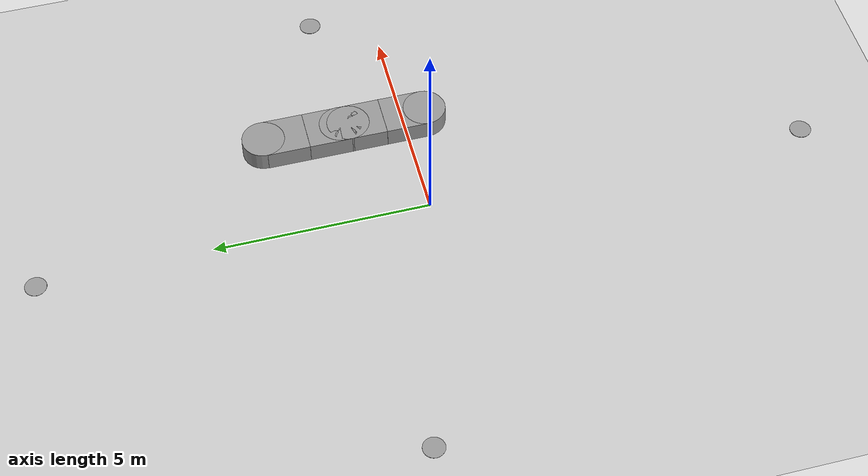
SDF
<sdf version="1.6">
 <world name="default">
  <light name="sun" type="directional">
   <pose>0 0 10 0 -0 0</pose>
   <diffuse>0.8 0.8 0.8 1</diffuse>
   <specular>0.1 0.1 0.1 1</specular>
   <attenuation>
    <range>1000</range>
    <constant>0.9</constant>
    <linear>0.01</linear>
    <quadratic>0.001</quadratic>
   </attenuation>
   <direction>-0.5 0.5 -1</direction>
  </light>
  <model name="ground_plane">
   <static>1</static>
   <link name="link">
    <collision name="collision">
     <geometry><plane><normal>0 0 1</normal><size>100 100</size></plane></geometry>
     <surface><friction><ode><mu>100</mu><mu2>50</mu2></ode></friction></surface>
    </collision>
    <visual name="visual">
     <cast_shadows>0</cast_shadows>
     <geometry><plane><normal>0 0 1</normal><size>100 100</size></plane></geometry>
     <material>
      <script><uri>file://media/materials/scripts/gazebo.material</uri><name>Gazebo/Grey</name></script>
     </material>
    </visual>
   </link>
  </model>
  <gravity>0 0 -9.8</gravity>
  <magnetic_field>6e-06 2.3e-05 -4.2e-05</magnetic_field>
  <atmosphere type="adiabatic"/>
  <physics name="default_physics" default="0" type="ode">
   <max_step_size>0.001</max_step_size>
   <real_time_factor>1</real_time_factor>
   <real_time_update_rate>1000</real_time_update_rate>
  </physics>
  <scene><ambient>0.4 0.4 0.4 1</ambient><background>0.7 0.7 0.7 1</background><shadows>1</shadows></scene>
  <spherical_coordinates>
   <surface_model>EARTH_WGS84</surface_model>
   <latitude_deg>0</latitude_deg>
   <longitude_deg>0</longitude_deg>
   <elevation>0</elevation>
   <heading_deg>0</heading_deg>
  </spherical_coordinates>
  <model name="circle_05_white">
   <link name="link">
    <pose>0 -0.014166 0 0 -0 0</pose>
    <inertial>
     <mass>1</mass>
     <inertia><ixx>0.145833</ixx><ixy>0</ixy><ixz>0</ixz><iyy>0.145833</iyy><iyz>0</iyz><izz>0.125</izz></inertia>
    </inertial>
    <visual name="ModelPreview_1::link::visual_1">
     <geometry><cylinder><radius>0.25</radius><length>0.001</length></cylinder></geometry>
     <material>
      <script><name>Gazebo/Grey</name><uri>file://media/materials/scripts/gazebo.material</uri></script>
      <ambient>1 1 1 1</ambient>
      <diffuse>1 1 1 1</diffuse>
      <specular>0.01 0.01 0.01 1</specular>
      <emissive>0 0 0 1</emissive>
      <shader type="vertex"><normal_map>__default__</normal_map></shader>
     </material>
    </visual>
    <visual name="visual">
     <geometry><cylinder><radius>0.25</radius><length>0.01</length></cylinder></geometry>
     <material>
      <script><name>Gazebo/Grey</name><uri>file://media/materials/scripts/gazebo.material</uri></script>
      <ambient>1 1 1 1</ambient>
      <diffuse>1 1 1 1</diffuse>
      <specular>0.01 0.01 0.01 1</specular>
      <emissive>0 0 0 1</emissive>
      <shader type="vertex"><normal_map>__default__</normal_map></shader>
     </material>
    </visual>
    <visual name="ModelPreview_1::link::visual_2">
     <geometry><cylinder><radius>0.25</radius><length>0.01</length></cylinder></geometry>
     <material>
      <script><name>Gazebo/Grey</name><uri>file://media/materials/scripts/gazebo.material</uri></script>
      <ambient>1 1 1 1</ambient>
      <diffuse>1 1 1 1</diffuse>
      <specular>0.01 0.01 0.01 1</specular>
      <emissive>0 0 0 1</emissive>
      <shader type="vertex"><normal_map>__default__</normal_map></shader>
     </material>
    </visual>
    <collision name="collision">
     <geometry><cylinder><radius>0.25</radius><length>1e-05</length></cylinder></geometry>
     <surface>
      <friction>
       <ode><mu>1</mu><mu2>1</mu2><fdir1>0 0 0</fdir1><slip1>0</slip1><slip2>0</slip2></ode>
       <torsional>
        <coefficient>1</coefficient>
        <patch_radius>0</patch_radius>
        <surface_radius>0</surface_radius>
        <use_patch_radius>1</use_patch_radius>
        <ode><slip>0</slip></ode>
       </torsional>
      </friction>
      <bounce><restitution_coefficient>0</restitution_coefficient><threshold>1e+06</threshold></bounce>
      <contact>
       <collide_without_contact>0</collide_without_contact>
       <collide_without_contact_bitmask>1</collide_without_contact_bitmask>
       <collide_bitmask>1</collide_bitmask>
       <ode>
        <soft_cfm>0</soft_cfm>
        <soft_erp>0.2</soft_erp>
        <kp>1e+13</kp>
        <kd>1</kd>
        <max_vel>0.01</max_vel>
        <min_depth>0</min_depth>
       </ode>
       <bullet>
        <split_impulse>1</split_impulse>
        <split_impulse_penetration_threshold>-0.01</split_impulse_penetration_threshold>
        <soft_cfm>0</soft_cfm>
        <soft_erp>0.2</soft_erp>
        <kp>1e+13</kp>
        <kd>1</kd>
       </bullet>
      </contact>
     </surface>
    </collision>
   </link>
   <static>1</static>
   <pose>6.1 1.5 -0.004551 0 -0 0</pose>
  </model>
  <model name="for_bug_box_and_cylinder_0">
   <link name="link">
    <pose>0.028116 0.126799 0 0 -0 0</pose>
    <inertial>
     <mass>1</mass>
     <inertia><ixx>0.145833</ixx><ixy>0</ixy><ixz>0</ixz><iyy>0.145833</iyy><iyz>0</iyz><izz>0.125</izz></inertia>
    </inertial>
    <visual name="visual">
     <geometry><cylinder><radius>0.5</radius><length>0.5</length></cylinder></geometry>
     <material>
      <script><name>Gazebo/Grey</name><uri>file://media/materials/scripts/gazebo.material</uri></script>
      <ambient>1 1 1 1</ambient>
      <diffuse>1 1 1 1</diffuse>
      <specular>0.01 0.01 0.01 1</specular>
      <emissive>0 0 0 1</emissive>
      <shader type="vertex"><normal_map>__default__</normal_map></shader>
     </material>
    </visual>
    <collision name="collision">
     <geometry><cylinder><radius>0.5</radius><length>0.5</length></cylinder></geometry>
     <surface>
      <friction>
       <ode><mu>1</mu><mu2>1</mu2><fdir1>0 0 0</fdir1><slip1>0</slip1><slip2>0</slip2></ode>
       <torsional>
        <coefficient>1</coefficient>
        <patch_radius>0</patch_radius>
        <surface_radius>0</surface_radius>
        <use_patch_radius>1</use_patch_radius>
        <ode><slip>0</slip></ode>
       </torsional>
      </friction>
      <bounce><restitution_coefficient>0</restitution_coefficient><threshold>1e+06</threshold></bounce>
      <contact>
       <collide_without_contact>0</collide_without_contact>
       <collide_without_contact_bitmask>1</collide_without_contact_bitmask>
       <collide_bitmask>1</collide_bitmask>
       <ode>
        <soft_cfm>0</soft_cfm>
        <soft_erp>0.2</soft_erp>
        <kp>1e+13</kp>
        <kd>1</kd>
        <max_vel>0.01</max_vel>
        <min_depth>0</min_depth>
       </ode>
       <bullet>
        <split_impulse>1</split_impulse>
        <split_impulse_penetration_threshold>-0.01</split_impulse_penetration_threshold>
        <soft_cfm>0</soft_cfm>
        <soft_erp>0.2</soft_erp>
        <kp>1e+13</kp>
        <kd>1</kd>
       </bullet>
      </contact>
     </surface>
    </collision>
   </link>
   <link name="link_0">
    <pose>0.02413 -0.383869 -0.000126 2e-06 4e-06 -0</pose>
    <inertial>
     <mass>1</mass>
     <inertia>
      <ixx>0.166667</ixx>
      <ixy>0</ixy>
      <ixz>0</ixz>
      <iyy>0.166667</iyy>
      <iyz>0</iyz>
      <izz>0.166667</izz>
     </inertia>
    </inertial>
    <visual name="visual">
     <geometry><box><size>1 1 0.5</size></box></geometry>
     <material>
      <lighting>1</lighting>
      <script><uri>file://media/materials/scripts/gazebo.material</uri><name>Gazebo/Grey</name></script>
      <ambient>1 1 1 1</ambient>
      <diffuse>1 1 1 1</diffuse>
      <specular>0.01 0.01 0.01 1</specular>
      <emissive>0 0 0 1</emissive>
      <shader type="vertex"><normal_map>__default__</normal_map></shader>
     </material>
    </visual>
    <collision name="collision">
     <geometry><box><size>1 1 0.5</size></box></geometry>
     <surface>
      <friction>
       <ode><mu>1</mu><mu2>1</mu2><fdir1>0 0 0</fdir1><slip1>0</slip1><slip2>0</slip2></ode>
       <torsional>
        <coefficient>1</coefficient>
        <patch_radius>0</patch_radius>
        <surface_radius>0</surface_radius>
        <use_patch_radius>1</use_patch_radius>
        <ode><slip>0</slip></ode>
       </torsional>
      </friction>
      <bounce><restitution_coefficient>0</restitution_coefficient><threshold>1e+06</threshold></bounce>
      <contact>
       <collide_without_contact>0</collide_without_contact>
       <collide_without_contact_bitmask>1</collide_without_contact_bitmask>
       <collide_bitmask>1</collide_bitmask>
       <ode>
        <soft_cfm>0</soft_cfm>
        <soft_erp>0.2</soft_erp>
        <kp>1e+13</kp>
        <kd>1</kd>
        <max_vel>0.01</max_vel>
        <min_depth>0</min_depth>
       </ode>
       <bullet>
        <split_impulse>1</split_impulse>
        <split_impulse_penetration_threshold>-0.01</split_impulse_penetration_threshold>
        <soft_cfm>0</soft_cfm>
        <soft_erp>0.2</soft_erp>
        <kp>1e+13</kp>
        <kd>1</kd>
       </bullet>
      </contact>
     </surface>
    </collision>
   </link>
   <link name="link_0_clone">
    <pose>0.023336 -1.38461 -0.000129 4e-06 8e-06 0</pose>
    <inertial>
     <mass>1</mass>
     <inertia>
      <ixx>0.166667</ixx>
      <ixy>0</ixy>
      <ixz>0</ixz>
      <iyy>0.166667</iyy>
      <iyz>0</iyz>
      <izz>0.166667</izz>
     </inertia>
    </inertial>
    <visual name="visual">
     <geometry><box><size>1 1 0.5</size></box></geometry>
     <material>
      <lighting>1</lighting>
      <script><uri>file://media/materials/scripts/gazebo.material</uri><name>Gazebo/Grey</name></script>
      <ambient>1 1 1 1</ambient>
      <diffuse>1 1 1 1</diffuse>
      <specular>0.01 0.01 0.01 1</specular>
      <emissive>0 0 0 1</emissive>
      <shader type="vertex"><normal_map>__default__</normal_map></shader>
     </material>
    </visual>
    <collision name="collision">
     <geometry><box><size>1 1 0.5</size></box></geometry>
     <surface>
      <friction>
       <ode><mu>1</mu><mu2>1</mu2><fdir1>0 0 0</fdir1><slip1>0</slip1><slip2>0</slip2></ode>
       <torsional>
        <coefficient>1</coefficient>
        <patch_radius>0</patch_radius>
        <surface_radius>0</surface_radius>
        <use_patch_radius>1</use_patch_radius>
        <ode><slip>0</slip></ode>
       </torsional>
      </friction>
      <bounce><restitution_coefficient>0</restitution_coefficient><threshold>1e+06</threshold></bounce>
      <contact>
       <collide_without_contact>0</collide_without_contact>
       <collide_without_contact_bitmask>1</collide_without_contact_bitmask>
       <collide_bitmask>1</collide_bitmask>
       <ode>
        <soft_cfm>0</soft_cfm>
        <soft_erp>0.2</soft_erp>
        <kp>1e+13</kp>
        <kd>1</kd>
        <max_vel>0.01</max_vel>
        <min_depth>0</min_depth>
       </ode>
       <bullet>
        <split_impulse>1</split_impulse>
        <split_impulse_penetration_threshold>-0.01</split_impulse_penetration_threshold>
        <soft_cfm>0</soft_cfm>
        <soft_erp>0.2</soft_erp>
        <kp>1e+13</kp>
        <kd>1</kd>
       </bullet>
      </contact>
     </surface>
    </collision>
   </link>
   <model name="cylinder_05_05">
    <link name="link">
     <inertial>
      <mass>1</mass>
      <inertia><ixx>0.145833</ixx><ixy>0</ixy><ixz>0</ixz><iyy>0.145833</iyy><iyz>0</iyz><izz>0.125</izz></inertia>
     </inertial>
     <visual name="visual">
      <geometry><cylinder><radius>0.5</radius><length>0.5</length></cylinder></geometry>
      <material>
       <script><name>Gazebo/Grey</name><uri>file://media/materials/scripts/gazebo.material</uri></script>
       <ambient>1 1 1 1</ambient>
       <diffuse>1 1 1 1</diffuse>
       <specular>0.01 0.01 0.01 1</specular>
       <emissive>0 0 0 1</emissive>
       <shader type="vertex"><normal_map>__default__</normal_map></shader>
      </material>
     </visual>
     <collision name="collision">
      <geometry><cylinder><radius>0.5</radius><length>0.5</length></cylinder></geometry>
      <surface>
       <friction>
        <ode><mu>1</mu><mu2>1</mu2><fdir1>0 0 0</fdir1><slip1>0</slip1><slip2>0</slip2></ode>
        <torsional>
         <coefficient>1</coefficient>
         <patch_radius>0</patch_radius>
         <surface_radius>0</surface_radius>
         <use_patch_radius>1</use_patch_radius>
         <ode><slip>0</slip></ode>
        </torsional>
       </friction>
       <bounce><restitution_coefficient>0</restitution_coefficient><threshold>1e+06</threshold></bounce>
       <contact>
        <collide_without_contact>0</collide_without_contact>
        <collide_without_contact_bitmask>1</collide_without_contact_bitmask>
        <collide_bitmask>1</collide_bitmask>
        <ode>
         <soft_cfm>0</soft_cfm>
         <soft_erp>0.2</soft_erp>
         <kp>1e+13</kp>
         <kd>1</kd>
         <max_vel>0.01</max_vel>
         <min_depth>0</min_depth>
        </ode>
        <bullet>
         <split_impulse>1</split_impulse>
         <split_impulse_penetration_threshold>-0.01</split_impulse_penetration_threshold>
         <soft_cfm>0</soft_cfm>
         <soft_erp>0.2</soft_erp>
         <kp>1e+13</kp>
         <kd>1</kd>
        </bullet>
       </contact>
      </surface>
     </collision>
    </link>
    <static>1</static>
    <pose>0.023219 -1.88572 -3e-06 0 -0 0</pose>
   </model>
   <static>1</static>
   <pose>2.4748 1.38461 0.200001 -2e-06 -4e-06 -0</pose>
  </model>
  <model name="for_bug_box_and_cylinder_0_clone">
   <link name="link">
    <pose>0.028116 0.126799 0 0 -0 0</pose>
    <inertial>
     <mass>1</mass>
     <inertia><ixx>0.145833</ixx><ixy>0</ixy><ixz>0</ixz><iyy>0.145833</iyy><iyz>0</iyz><izz>0.125</izz></inertia>
    </inertial>
    <visual name="visual">
     <geometry><cylinder><radius>0.5</radius><length>0.5</length></cylinder></geometry>
     <material>
      <script><name>Gazebo/Grey</name><uri>file://media/materials/scripts/gazebo.material</uri></script>
      <ambient>1 1 1 1</ambient>
      <diffuse>1 1 1 1</diffuse>
      <specular>0.01 0.01 0.01 1</specular>
      <emissive>0 0 0 1</emissive>
      <shader type="vertex"><normal_map>__default__</normal_map></shader>
     </material>
    </visual>
    <collision name="collision">
     <geometry><cylinder><radius>0.5</radius><length>0.5</length></cylinder></geometry>
     <surface>
      <friction>
       <ode><mu>1</mu><mu2>1</mu2><fdir1>0 0 0</fdir1><slip1>0</slip1><slip2>0</slip2></ode>
       <torsional>
        <coefficient>1</coefficient>
        <patch_radius>0</patch_radius>
        <surface_radius>0</surface_radius>
        <use_patch_radius>1</use_patch_radius>
        <ode><slip>0</slip></ode>
       </torsional>
      </friction>
      <bounce><restitution_coefficient>0</restitution_coefficient><threshold>1e+06</threshold></bounce>
      <contact>
       <collide_without_contact>0</collide_without_contact>
       <collide_without_contact_bitmask>1</collide_without_contact_bitmask>
       <collide_bitmask>1</collide_bitmask>
       <ode>
        <soft_cfm>0</soft_cfm>
        <soft_erp>0.2</soft_erp>
        <kp>1e+13</kp>
        <kd>1</kd>
        <max_vel>0.01</max_vel>
        <min_depth>0</min_depth>
       </ode>
       <bullet>
        <split_impulse>1</split_impulse>
        <split_impulse_penetration_threshold>-0.01</split_impulse_penetration_threshold>
        <soft_cfm>0</soft_cfm>
        <soft_erp>0.2</soft_erp>
        <kp>1e+13</kp>
        <kd>1</kd>
       </bullet>
      </contact>
     </surface>
    </collision>
   </link>
   <link name="link_0">
    <pose>0.02413 -0.383869 -0.000126 2e-06 4e-06 -0</pose>
    <inertial>
     <mass>1</mass>
     <inertia>
      <ixx>0.166667</ixx>
      <ixy>0</ixy>
      <ixz>0</ixz>
      <iyy>0.166667</iyy>
      <iyz>0</iyz>
      <izz>0.166667</izz>
     </inertia>
    </inertial>
    <visual name="visual">
     <geometry><box><size>1 1 0.5</size></box></geometry>
     <material>
      <lighting>1</lighting>
      <script><uri>file://media/materials/scripts/gazebo.material</uri><name>Gazebo/Grey</name></script>
      <ambient>1 1 1 1</ambient>
      <diffuse>1 1 1 1</diffuse>
      <specular>0.01 0.01 0.01 1</specular>
      <emissive>0 0 0 1</emissive>
      <shader type="vertex"><normal_map>__default__</normal_map></shader>
     </material>
    </visual>
    <collision name="collision">
     <geometry><box><size>1 1 0.5</size></box></geometry>
     <surface>
      <friction>
       <ode><mu>1</mu><mu2>1</mu2><fdir1>0 0 0</fdir1><slip1>0</slip1><slip2>0</slip2></ode>
       <torsional>
        <coefficient>1</coefficient>
        <patch_radius>0</patch_radius>
        <surface_radius>0</surface_radius>
        <use_patch_radius>1</use_patch_radius>
        <ode><slip>0</slip></ode>
       </torsional>
      </friction>
      <bounce><restitution_coefficient>0</restitution_coefficient><threshold>1e+06</threshold></bounce>
      <contact>
       <collide_without_contact>0</collide_without_contact>
       <collide_without_contact_bitmask>1</collide_without_contact_bitmask>
       <collide_bitmask>1</collide_bitmask>
       <ode>
        <soft_cfm>0</soft_cfm>
        <soft_erp>0.2</soft_erp>
        <kp>1e+13</kp>
        <kd>1</kd>
        <max_vel>0.01</max_vel>
        <min_depth>0</min_depth>
       </ode>
       <bullet>
        <split_impulse>1</split_impulse>
        <split_impulse_penetration_threshold>-0.01</split_impulse_penetration_threshold>
        <soft_cfm>0</soft_cfm>
        <soft_erp>0.2</soft_erp>
        <kp>1e+13</kp>
        <kd>1</kd>
       </bullet>
      </contact>
     </surface>
    </collision>
   </link>
   <link name="link_0_clone">
    <pose>0.023336 -1.38461 -0.000129 4e-06 8e-06 0</pose>
    <inertial>
     <mass>1</mass>
     <inertia>
      <ixx>0.166667</ixx>
      <ixy>0</ixy>
      <ixz>0</ixz>
      <iyy>0.166667</iyy>
      <iyz>0</iyz>
      <izz>0.166667</izz>
     </inertia>
    </inertial>
    <visual name="visual">
     <geometry><box><size>1 1 0.5</size></box></geometry>
     <material>
      <lighting>1</lighting>
      <script><uri>file://media/materials/scripts/gazebo.material</uri><name>Gazebo/Grey</name></script>
      <ambient>1 1 1 1</ambient>
      <diffuse>1 1 1 1</diffuse>
      <specular>0.01 0.01 0.01 1</specular>
      <emissive>0 0 0 1</emissive>
      <shader type="vertex"><normal_map>__default__</normal_map></shader>
     </material>
    </visual>
    <collision name="collision">
     <geometry><box><size>1 1 0.5</size></box></geometry>
     <surface>
      <friction>
       <ode><mu>1</mu><mu2>1</mu2><fdir1>0 0 0</fdir1><slip1>0</slip1><slip2>0</slip2></ode>
       <torsional>
        <coefficient>1</coefficient>
        <patch_radius>0</patch_radius>
        <surface_radius>0</surface_radius>
        <use_patch_radius>1</use_patch_radius>
        <ode><slip>0</slip></ode>
       </torsional>
      </friction>
      <bounce><restitution_coefficient>0</restitution_coefficient><threshold>1e+06</threshold></bounce>
      <contact>
       <collide_without_contact>0</collide_without_contact>
       <collide_without_contact_bitmask>1</collide_without_contact_bitmask>
       <collide_bitmask>1</collide_bitmask>
       <ode>
        <soft_cfm>0</soft_cfm>
        <soft_erp>0.2</soft_erp>
        <kp>1e+13</kp>
        <kd>1</kd>
        <max_vel>0.01</max_vel>
        <min_depth>0</min_depth>
       </ode>
       <bullet>
        <split_impulse>1</split_impulse>
        <split_impulse_penetration_threshold>-0.01</split_impulse_penetration_threshold>
        <soft_cfm>0</soft_cfm>
        <soft_erp>0.2</soft_erp>
        <kp>1e+13</kp>
        <kd>1</kd>
       </bullet>
      </contact>
     </surface>
    </collision>
   </link>
   <model name="cylinder_05_05">
    <link name="link">
     <inertial>
      <mass>1</mass>
      <inertia><ixx>0.145833</ixx><ixy>0</ixy><ixz>0</ixz><iyy>0.145833</iyy><iyz>0</iyz><izz>0.125</izz></inertia>
     </inertial>
     <visual name="visual">
      <geometry><cylinder><radius>0.5</radius><length>0.5</length></cylinder></geometry>
      <material>
       <script><name>Gazebo/Grey</name><uri>file://media/materials/scripts/gazebo.material</uri></script>
       <ambient>1 1 1 1</ambient>
       <diffuse>1 1 1 1</diffuse>
       <specular>0.01 0.01 0.01 1</specular>
       <emissive>0 0 0 1</emissive>
       <shader type="vertex"><normal_map>__default__</normal_map></shader>
      </material>
     </visual>
     <collision name="collision">
      <geometry><cylinder><radius>0.5</radius><length>0.5</length></cylinder></geometry>
      <surface>
       <friction>
        <ode><mu>1</mu><mu2>1</mu2><fdir1>0 0 0</fdir1><slip1>0</slip1><slip2>0</slip2></ode>
        <torsional>
         <coefficient>1</coefficient>
         <patch_radius>0</patch_radius>
         <surface_radius>0</surface_radius>
         <use_patch_radius>1</use_patch_radius>
         <ode><slip>0</slip></ode>
        </torsional>
       </friction>
       <bounce><restitution_coefficient>0</restitution_coefficient><threshold>1e+06</threshold></bounce>
       <contact>
        <collide_without_contact>0</collide_without_contact>
        <collide_without_contact_bitmask>1</collide_without_contact_bitmask>
        <collide_bitmask>1</collide_bitmask>
        <ode>
         <soft_cfm>0</soft_cfm>
         <soft_erp>0.2</soft_erp>
         <kp>1e+13</kp>
         <kd>1</kd>
         <max_vel>0.01</max_vel>
         <min_depth>0</min_depth>
        </ode>
        <bullet>
         <split_impulse>1</split_impulse>
         <split_impulse_penetration_threshold>-0.01</split_impulse_penetration_threshold>
         <soft_cfm>0</soft_cfm>
         <soft_erp>0.2</soft_erp>
         <kp>1e+13</kp>
         <kd>1</kd>
        </bullet>
       </contact>
      </surface>
     </collision>
    </link>
    <static>1</static>
    <pose>0.023219 -1.88572 -3e-06 0 -0 0</pose>
   </model>
   <static>1</static>
   <pose>2.47119 3.21862 0.200001 -2e-06 -4e-06 -0</pose>
  </model>
  <model name="circle_05_white_clone">
   <link name="link">
    <pose>0 -0.014166 0 0 -0 0</pose>
    <inertial>
     <mass>1</mass>
     <inertia><ixx>0.145833</ixx><ixy>0</ixy><ixz>0</ixz><iyy>0.145833</iyy><iyz>0</iyz><izz>0.125</izz></inertia>
    </inertial>
    <visual name="ModelPreview_1::link::visual_1">
     <geometry><cylinder><radius>0.25</radius><length>0.001</length></cylinder></geometry>
     <material>
      <script><name>Gazebo/Grey</name><uri>file://media/materials/scripts/gazebo.material</uri></script>
      <ambient>1 1 1 1</ambient>
      <diffuse>1 1 1 1</diffuse>
      <specular>0.01 0.01 0.01 1</specular>
      <emissive>0 0 0 1</emissive>
      <shader type="vertex"><normal_map>__default__</normal_map></shader>
     </material>
    </visual>
    <visual name="visual">
     <geometry><cylinder><radius>0.25</radius><length>0.01</length></cylinder></geometry>
     <material>
      <script><name>Gazebo/Grey</name><uri>file://media/materials/scripts/gazebo.material</uri></script>
      <ambient>1 1 1 1</ambient>
      <diffuse>1 1 1 1</diffuse>
      <specular>0.01 0.01 0.01 1</specular>
      <emissive>0 0 0 1</emissive>
      <shader type="vertex"><normal_map>__default__</normal_map></shader>
     </material>
    </visual>
    <visual name="ModelPreview_1::link::visual_2">
     <geometry><cylinder><radius>0.25</radius><length>0.01</length></cylinder></geometry>
     <material>
      <script><name>Gazebo/Grey</name><uri>file://media/materials/scripts/gazebo.material</uri></script>
      <ambient>1 1 1 1</ambient>
      <diffuse>1 1 1 1</diffuse>
      <specular>0.01 0.01 0.01 1</specular>
      <emissive>0 0 0 1</emissive>
      <shader type="vertex"><normal_map>__default__</normal_map></shader>
     </material>
    </visual>
    <collision name="collision">
     <geometry><cylinder><radius>0.25</radius><length>1e-05</length></cylinder></geometry>
     <surface>
      <friction>
       <ode><mu>1</mu><mu2>1</mu2><fdir1>0 0 0</fdir1><slip1>0</slip1><slip2>0</slip2></ode>
       <torsional>
        <coefficient>1</coefficient>
        <patch_radius>0</patch_radius>
        <surface_radius>0</surface_radius>
        <use_patch_radius>1</use_patch_radius>
        <ode><slip>0</slip></ode>
       </torsional>
      </friction>
      <bounce><restitution_coefficient>0</restitution_coefficient><threshold>1e+06</threshold></bounce>
      <contact>
       <collide_without_contact>0</collide_without_contact>
       <collide_without_contact_bitmask>1</collide_without_contact_bitmask>
       <collide_bitmask>1</collide_bitmask>
       <ode>
        <soft_cfm>0</soft_cfm>
        <soft_erp>0.2</soft_erp>
        <kp>1e+13</kp>
        <kd>1</kd>
        <max_vel>0.01</max_vel>
        <min_depth>0</min_depth>
       </ode>
       <bullet>
        <split_impulse>1</split_impulse>
        <split_impulse_penetration_threshold>-0.01</split_impulse_penetration_threshold>
        <soft_cfm>0</soft_cfm>
        <soft_erp>0.2</soft_erp>
        <kp>1e+13</kp>
        <kd>1</kd>
       </bullet>
      </contact>
     </surface>
    </collision>
   </link>
   <static>1</static>
   <pose>-6.1 1.5 -0.004823 0 -0 0</pose>
  </model>
  <model name="circle_05_white_0">
   <link name="link">
    <pose>0 -0.014166 0 0 -0 0</pose>
    <inertial>
     <mass>1</mass>
     <inertia><ixx>0.145833</ixx><ixy>0</ixy><ixz>0</ixz><iyy>0.145833</iyy><iyz>0</iyz><izz>0.125</izz></inertia>
    </inertial>
    <visual name="ModelPreview_1::link::visual_1">
     <geometry><cylinder><radius>0.25</radius><length>0.001</length></cylinder></geometry>
     <material>
      <script><name>Gazebo/Grey</name><uri>file://media/materials/scripts/gazebo.material</uri></script>
      <ambient>0.3 0.3 0.3 1</ambient>
      <diffuse>0.7 0.7 0.7 1</diffuse>
      <specular>0.01 0.01 0.01 1</specular>
      <emissive>1 1 1 0.9</emissive>
      <shader type="vertex"><normal_map>__default__</normal_map></shader>
     </material>
    </visual>
    <visual name="visual">
     <geometry><cylinder><radius>0.25</radius><length>0.01</length></cylinder></geometry>
     <material>
      <script><name>Gazebo/Grey</name><uri>file://media/materials/scripts/gazebo.material</uri></script>
      <ambient>0.3 0.3 0.3 1</ambient>
      <diffuse>0.7 0.7 0.7 1</diffuse>
      <specular>0.01 0.01 0.01 1</specular>
      <emissive>1 1 1 0.9</emissive>
      <shader type="vertex"><normal_map>__default__</normal_map></shader>
     </material>
    </visual>
    <visual name="ModelPreview_1::link::visual_2">
     <geometry><cylinder><radius>0.25</radius><length>0.01</length></cylinder></geometry>
     <material>
      <script><name>Gazebo/Grey</name><uri>file://media/materials/scripts/gazebo.material</uri></script>
      <ambient>0.3 0.3 0.3 1</ambient>
      <diffuse>0.7 0.7 0.7 1</diffuse>
      <specular>0.01 0.01 0.01 1</specular>
      <emissive>0 0.8 0.8 0</emissive>
      <shader type="vertex"><normal_map>__default__</normal_map></shader>
     </material>
    </visual>
    <collision name="collision">
     <geometry><cylinder><radius>0.25</radius><length>1e-05</length></cylinder></geometry>
     <surface>
      <friction>
       <ode><mu>1</mu><mu2>1</mu2><fdir1>0 0 0</fdir1><slip1>0</slip1><slip2>0</slip2></ode>
       <torsional>
        <coefficient>1</coefficient>
        <patch_radius>0</patch_radius>
        <surface_radius>0</surface_radius>
        <use_patch_radius>1</use_patch_radius>
        <ode><slip>0</slip></ode>
       </torsional>
      </friction>
      <bounce><restitution_coefficient>0</restitution_coefficient><threshold>1e+06</threshold></bounce>
      <contact>
       <collide_without_contact>0</collide_without_contact>
       <collide_without_contact_bitmask>1</collide_without_contact_bitmask>
       <collide_bitmask>1</collide_bitmask>
       <ode>
        <soft_cfm>0</soft_cfm>
        <soft_erp>0.2</soft_erp>
        <kp>1e+13</kp>
        <kd>1</kd>
        <max_vel>0.01</max_vel>
        <min_depth>0</min_depth>
       </ode>
       <bullet>
        <split_impulse>1</split_impulse>
        <split_impulse_penetration_threshold>-0.01</split_impulse_penetration_threshold>
        <soft_cfm>0</soft_cfm>
        <soft_erp>0.2</soft_erp>
        <kp>1e+13</kp>
        <kd>1</kd>
       </bullet>
      </contact>
     </surface>
    </collision>
   </link>
   <static>1</static>
   <pose>0 9 -0.004905 0 -0 0</pose>
  </model>
  <model name="circle_05_white_0_clone">
   <link name="link">
    <pose>0 -0.014166 0 0 -0 0</pose>
    <inertial>
     <mass>1</mass>
     <inertia><ixx>0.145833</ixx><ixy>0</ixy><ixz>0</ixz><iyy>0.145833</iyy><iyz>0</iyz><izz>0.125</izz></inertia>
    </inertial>
    <visual name="ModelPreview_1::link::visual_1">
     <geometry><cylinder><radius>0.25</radius><length>0.001</length></cylinder></geometry>
     <material>
      <script><name>Gazebo/Grey</name><uri>file://media/materials/scripts/gazebo.material</uri></script>
      <ambient>0.3 0.3 0.3 1</ambient>
      <diffuse>0.7 0.7 0.7 1</diffuse>
      <specular>0.01 0.01 0.01 1</specular>
      <emissive>1 1 1 0.9</emissive>
      <shader type="vertex"><normal_map>__default__</normal_map></shader>
     </material>
    </visual>
    <visual name="visual">
     <geometry><cylinder><radius>0.25</radius><length>0.01</length></cylinder></geometry>
     <material>
      <script><name>Gazebo/Grey</name><uri>file://media/materials/scripts/gazebo.material</uri></script>
      <ambient>0.3 0.3 0.3 1</ambient>
      <diffuse>0.7 0.7 0.7 1</diffuse>
      <specular>0.01 0.01 0.01 1</specular>
      <emissive>1 1 1 0.9</emissive>
      <shader type="vertex"><normal_map>__default__</normal_map></shader>
     </material>
    </visual>
    <visual name="ModelPreview_1::link::visual_2">
     <geometry><cylinder><radius>0.25</radius><length>0.01</length></cylinder></geometry>
     <material>
      <script><name>Gazebo/Grey</name><uri>file://media/materials/scripts/gazebo.material</uri></script>
      <ambient>0.3 0.3 0.3 1</ambient>
      <diffuse>0.7 0.7 0.7 1</diffuse>
      <specular>0.01 0.01 0.01 1</specular>
      <emissive>0 0.8 0.8 0</emissive>
      <shader type="vertex"><normal_map>__default__</normal_map></shader>
     </material>
    </visual>
    <collision name="collision">
     <geometry><cylinder><radius>0.25</radius><length>1e-05</length></cylinder></geometry>
     <surface>
      <friction>
       <ode><mu>1</mu><mu2>1</mu2><fdir1>0 0 0</fdir1><slip1>0</slip1><slip2>0</slip2></ode>
       <torsional>
        <coefficient>1</coefficient>
        <patch_radius>0</patch_radius>
        <surface_radius>0</surface_radius>
        <use_patch_radius>1</use_patch_radius>
        <ode><slip>0</slip></ode>
       </torsional>
      </friction>
      <bounce><restitution_coefficient>0</restitution_coefficient><threshold>1e+06</threshold></bounce>
      <contact>
       <collide_without_contact>0</collide_without_contact>
       <collide_without_contact_bitmask>1</collide_without_contact_bitmask>
       <collide_bitmask>1</collide_bitmask>
       <ode>
        <soft_cfm>0</soft_cfm>
        <soft_erp>0.2</soft_erp>
        <kp>1e+13</kp>
        <kd>1</kd>
        <max_vel>0.01</max_vel>
        <min_depth>0</min_depth>
       </ode>
       <bullet>
        <split_impulse>1</split_impulse>
        <split_impulse_penetration_threshold>-0.01</split_impulse_penetration_threshold>
        <soft_cfm>0</soft_cfm>
        <soft_erp>0.2</soft_erp>
        <kp>1e+13</kp>
        <kd>1</kd>
       </bullet>
      </contact>
     </surface>
    </collision>
   </link>
   <static>1</static>
   <pose>0 -9 -0.003333 0 -0 0</pose>
  </model>
 </world>
</sdf>
